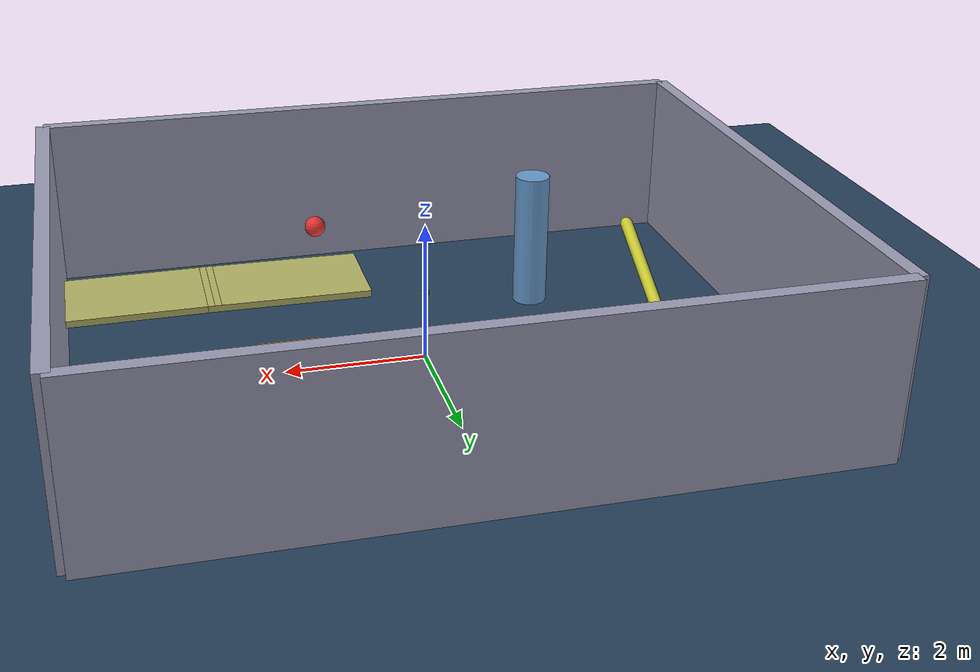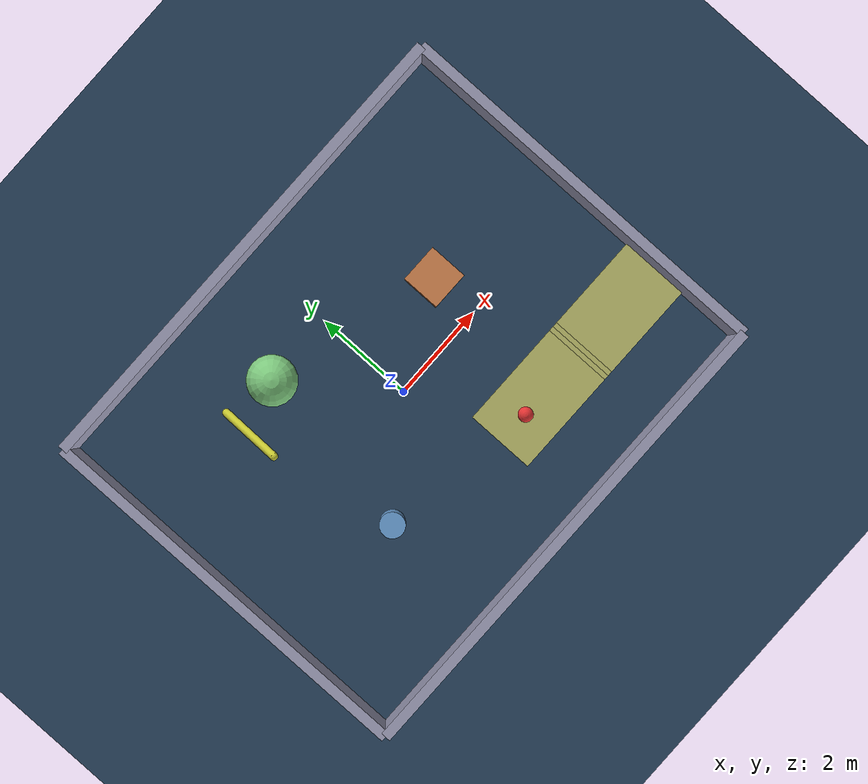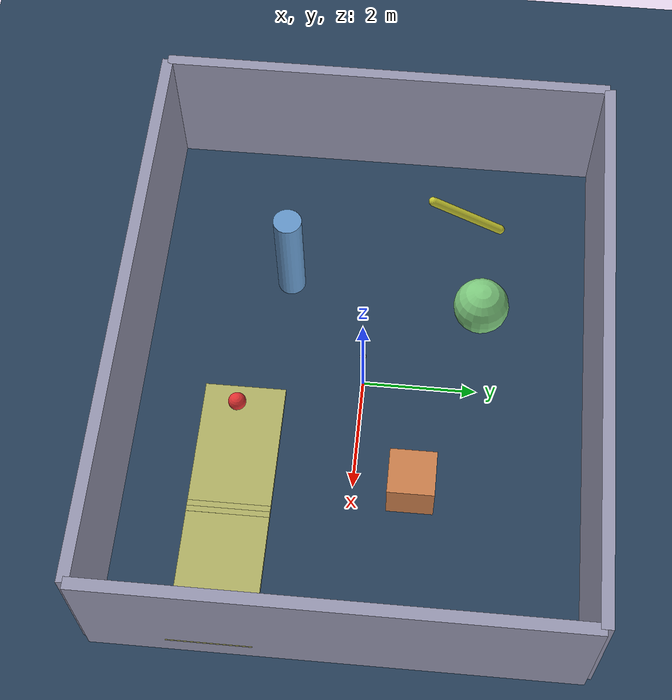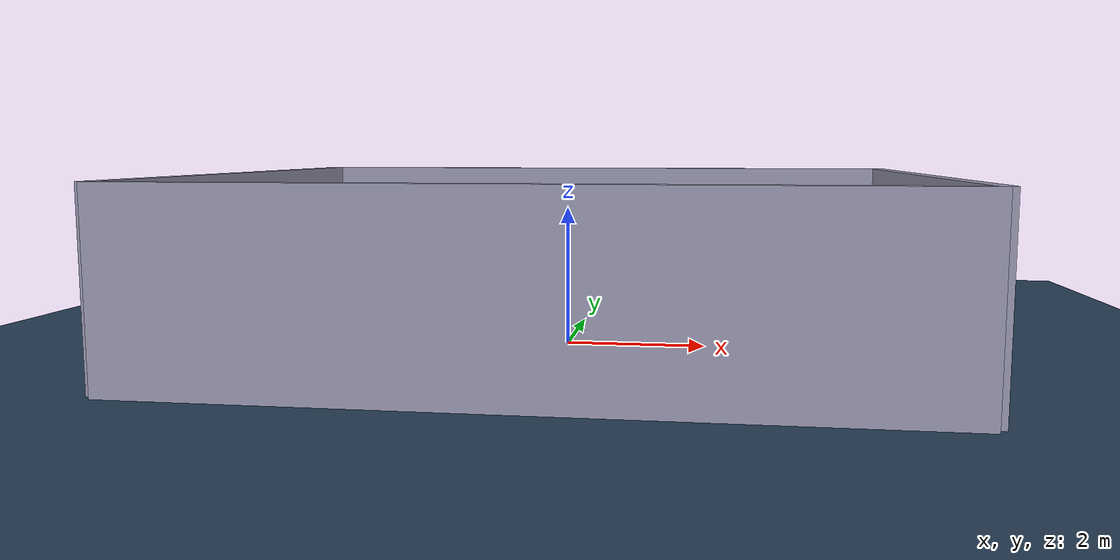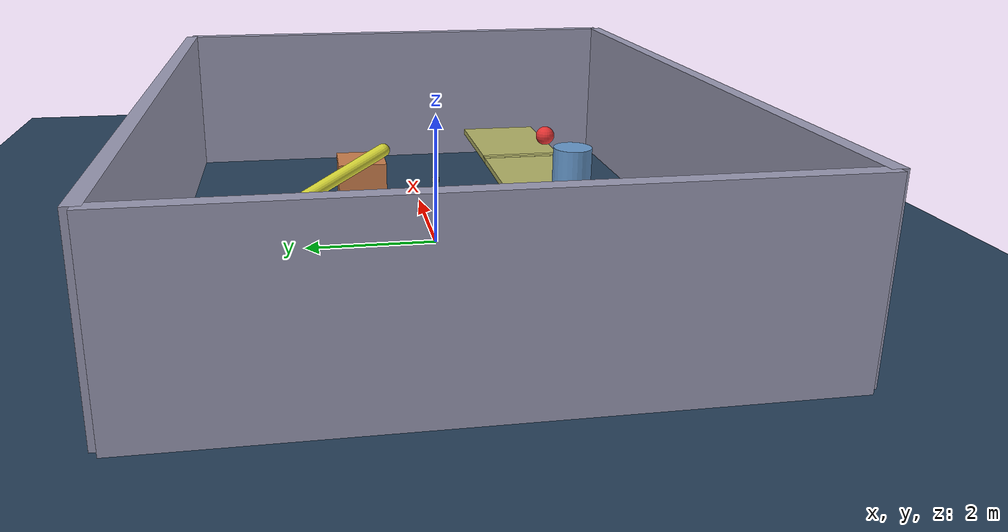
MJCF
<mujoco model="test_lidar">
  <option timestep="0.002" gravity="0 0 -9.81"/>

  <!-- The stock MuJoCo / Menagerie look: blue gradient sky and a dark blue-grey
       checkered ground. -->
  <visual>
    <headlight diffuse="0.6 0.6 0.6" ambient="0.3 0.3 0.3" specular="0 0 0"/>
    <rgba haze="0.15 0.25 0.35 1"/>
    <global azimuth="120" elevation="-20" offwidth="1280" offheight="720"/>
  </visual>

  <asset>
    <texture type="skybox" builtin="gradient" rgb1="0.3 0.5 0.7" rgb2="0 0 0"
             width="512" height="3072"/>
    <texture type="2d" name="groundplane" builtin="checker" mark="edge"
             rgb1="0.2 0.3 0.4" rgb2="0.1 0.2 0.3" markrgb="0.8 0.8 0.8"
             width="300" height="300"/>
    <material name="groundplane" texture="groundplane" texuniform="true" texrepeat="5 5"
              reflectance="0.2"/>
  </asset>

  <worldbody>
    <light pos="0 0 1.5" dir="0 0 -1" directional="true"/>
    <geom name="floor" type="plane" size="0 0 .05" material="groundplane"/>

    <!-- room: 10 x 8 m, walls 2.5 m high -->
    <geom name="wall_north" type="box" pos="0 4 1.25" size="5 .1 1.25" rgba=".6 .6 .7 1"/>
    <geom name="wall_south" type="box" pos="0 -4 1.25" size="5 .1 1.25" rgba=".6 .6 .7 1"/>
    <geom name="wall_east" type="box" pos="5 0 1.25" size=".1 4 1.25" rgba=".6 .6 .7 1"/>
    <geom name="wall_west" type="box" pos="-5 0 1.25" size=".1 4 1.25" rgba=".6 .6 .7 1"/>

    <!-- static obstacles -->
    <geom name="crate" type="box" pos="2 1 .4" size=".4 .4 .4" rgba=".8 .5 .3 1"/>
    <geom name="pillar" type="cylinder" pos="-2 -1.5 1" size=".25 1" rgba=".4 .6 .8 1"/>
    <geom name="dome" type="sphere" pos="-1.5 2 .5" size=".5" rgba=".5 .8 .5 1"/>
    <geom name="valley_a" type="box" pos="1.7 -2 .45" euler="0 -.30 0" size="1.2 .7 .05"
          rgba=".7 .7 .4 1" friction=".02 .005 .0001"/>
    <geom name="valley_b" type="box" pos="3.9 -2 .45" euler="0 .30 0" size="1.2 .7 .05"
          rgba=".7 .7 .4 1" friction=".02 .005 .0001"/>

    <!-- the sensor mast -->
    <body name="lidar_mast" pos="0 0 0">
      <geom name="mast_pole" type="cylinder" fromto="0 0 0 0 0 .95" size=".03" rgba=".3 .3 .3 1"/>
      <body name="lidar_link" pos="0 0 1.0">
        <geom name="mid360_housing" type="cylinder" size=".05 .03" rgba=".15 .15 .15 1"/>
        <site name="mid360" pos="0 0 0" size=".01"/>
      </body>
    </body>

    <!-- moving things -->
    <body name="ball" pos="1.2 -2 1.3">
      <freejoint/>
      <geom type="sphere" size=".15" rgba=".9 .2 .2 1" friction=".02 .005 .0001"/>
    </body>
    <body name="pendulum_pivot" pos="-2.5 1 2.2">
      <joint name="pendulum" type="hinge" axis="1 0 0" damping="0"/>
      <geom type="capsule" fromto="0 0 0 0 1.21 -0.70" size=".08" rgba=".8 .8 .2 1"/>
    </body>
  </worldbody>
</mujoco>
